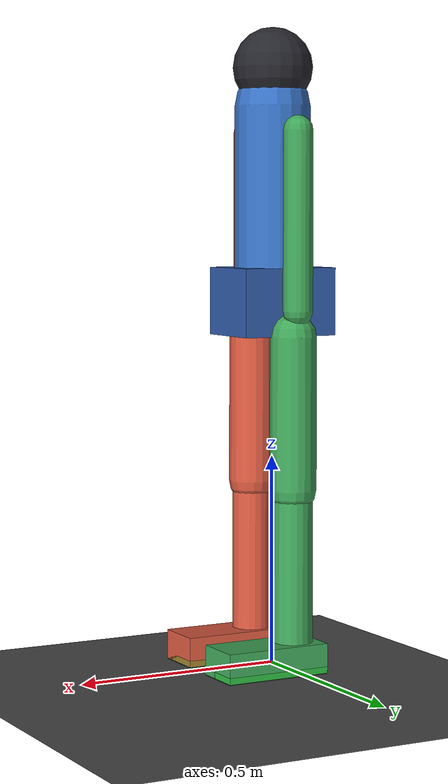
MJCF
<mujoco model="teaching_humanoid">
  <compiler angle="radian" inertiafromgeom="true" autolimits="true"/>
  <option timestep="0.002" gravity="0 0 -9.81" integrator="implicitfast">
    <flag contact="enable"/>
  </option>

  <visual>
    <headlight ambient="0.4 0.4 0.4" diffuse="0.8 0.8 0.8" specular="0.1 0.1 0.1"/>
    <rgba contactpoint="1 0 0 1" contactforce="1 0.3 0.1 1"/>
    <global azimuth="135" elevation="-18"/>
  </visual>

  <default>
    <joint damping="3" armature="0.02" limited="true"/>
    <geom friction="0.9 0.005 0.0001" condim="3" solref="0.01 1" solimp="0.9 0.95 0.001"/>
    <position kp="140" ctrllimited="true"/>
  </default>

  <asset>
    <texture name="grid" type="2d" builtin="checker" rgb1="0.25 0.25 0.25" rgb2="0.35 0.35 0.35" width="512" height="512"/>
    <material name="floor_mat" texture="grid" texrepeat="8 8" reflectance="0.05"/>
    <material name="pelvis_mat" rgba="0.18 0.35 0.65 1"/>
    <material name="torso_mat" rgba="0.22 0.45 0.78 1"/>
    <material name="left_mat" rgba="0.25 0.65 0.35 1"/>
    <material name="right_mat" rgba="0.85 0.35 0.25 1"/>
    <material name="dark_mat" rgba="0.15 0.15 0.18 1"/>
  </asset>

  <worldbody>
    <light pos="0 0 3" dir="0 0 -1" directional="true"/>
    <geom name="floor" type="plane" size="5 5 0.1" material="floor_mat" friction="0.9 0.005 0.0001"/>

    <body name="pelvis" pos="0 0 0.87">
      <freejoint name="root"/>
      <geom name="pelvis_geom" type="box" size="0.12 0.09 0.08" mass="6.0" material="pelvis_mat"/>
      <site name="pelvis_imu" pos="0 0 0" size="0.015" rgba="1 1 0 1"/>

      <body name="torso" pos="0 0 0.08">
        <geom name="torso_geom" type="capsule" fromto="0 0 0 0 0 0.38" size="0.09" mass="9.0" material="torso_mat"/>
        <body name="head" pos="0 0 0.47">
          <geom name="head_geom" type="sphere" size="0.095" mass="2.5" material="dark_mat"/>
        </body>
        <body name="left_arm" pos="0 0.12 0.32">
          <geom name="left_arm_geom" type="capsule" fromto="0 0 0 0 0 -0.42" size="0.035" mass="1.8" material="left_mat" contype="0" conaffinity="0"/>
        </body>
        <body name="right_arm" pos="0 -0.12 0.32">
          <geom name="right_arm_geom" type="capsule" fromto="0 0 0 0 0 -0.42" size="0.035" mass="1.8" material="right_mat" contype="0" conaffinity="0"/>
        </body>
      </body>

      <body name="left_thigh" pos="0 0.10 -0.08">
        <joint name="left_hip_yaw" type="hinge" axis="0 0 1" range="-0.6 0.6"/>
        <joint name="left_hip_roll" type="hinge" axis="1 0 0" range="-0.5 0.5"/>
        <joint name="left_hip_pitch" type="hinge" axis="0 1 0" range="-1.2 1.0"/>
        <geom name="left_thigh_geom" type="capsule" fromto="0 0 0 0 0 -0.36" size="0.055" mass="4.0" material="left_mat"/>
        <body name="left_shin" pos="0 0 -0.36">
          <joint name="left_knee" type="hinge" axis="0 1 0" range="0 2.1"/>
          <geom name="left_shin_geom" type="capsule" fromto="0 0 0 0 0 -0.36" size="0.047" mass="3.0" material="left_mat"/>
          <body name="left_foot" pos="0 0 -0.36">
            <joint name="left_ankle_pitch" type="hinge" axis="0 1 0" range="-0.8 0.8"/>
            <joint name="left_ankle_roll" type="hinge" axis="1 0 0" range="-0.5 0.5"/>
            <geom name="left_foot_geom" type="box" pos="0.07 0 -0.035" size="0.13 0.06 0.035" mass="1.2" material="left_mat"/>
            <site name="left_foot_touch_site" type="box" pos="0.07 0 -0.067" size="0.13 0.06 0.012" rgba="0 1 0 0.25"/>
          </body>
        </body>
      </body>

      <body name="right_thigh" pos="0 -0.10 -0.08">
        <joint name="right_hip_yaw" type="hinge" axis="0 0 1" range="-0.6 0.6"/>
        <joint name="right_hip_roll" type="hinge" axis="1 0 0" range="-0.5 0.5"/>
        <joint name="right_hip_pitch" type="hinge" axis="0 1 0" range="-1.2 1.0"/>
        <geom name="right_thigh_geom" type="capsule" fromto="0 0 0 0 0 -0.36" size="0.055" mass="4.0" material="right_mat"/>
        <body name="right_shin" pos="0 0 -0.36">
          <joint name="right_knee" type="hinge" axis="0 1 0" range="0 2.1"/>
          <geom name="right_shin_geom" type="capsule" fromto="0 0 0 0 0 -0.36" size="0.047" mass="3.0" material="right_mat"/>
          <body name="right_foot" pos="0 0 -0.36">
            <joint name="right_ankle_pitch" type="hinge" axis="0 1 0" range="-0.8 0.8"/>
            <joint name="right_ankle_roll" type="hinge" axis="1 0 0" range="-0.5 0.5"/>
            <geom name="right_foot_geom" type="box" pos="0.07 0 -0.035" size="0.13 0.06 0.035" mass="1.2" material="right_mat"/>
            <site name="right_foot_touch_site" type="box" pos="0.07 0 -0.067" size="0.13 0.06 0.012" rgba="0 1 0 0.25"/>
          </body>
        </body>
      </body>
    </body>
  </worldbody>

  <equality>
    <weld name="pelvis_weld" body1="pelvis"/>
  </equality>

  <actuator>
    <position name="left_hip_yaw_act" joint="left_hip_yaw" ctrlrange="-0.6 0.6"/>
    <position name="left_hip_roll_act" joint="left_hip_roll" ctrlrange="-0.5 0.5"/>
    <position name="left_hip_pitch_act" joint="left_hip_pitch" ctrlrange="-1.2 1.0"/>
    <position name="left_knee_act" joint="left_knee" ctrlrange="0 2.1"/>
    <position name="left_ankle_pitch_act" joint="left_ankle_pitch" ctrlrange="-0.8 0.8"/>
    <position name="left_ankle_roll_act" joint="left_ankle_roll" ctrlrange="-0.5 0.5"/>
    <position name="right_hip_yaw_act" joint="right_hip_yaw" ctrlrange="-0.6 0.6"/>
    <position name="right_hip_roll_act" joint="right_hip_roll" ctrlrange="-0.5 0.5"/>
    <position name="right_hip_pitch_act" joint="right_hip_pitch" ctrlrange="-1.2 1.0"/>
    <position name="right_knee_act" joint="right_knee" ctrlrange="0 2.1"/>
    <position name="right_ankle_pitch_act" joint="right_ankle_pitch" ctrlrange="-0.8 0.8"/>
    <position name="right_ankle_roll_act" joint="right_ankle_roll" ctrlrange="-0.5 0.5"/>
  </actuator>

  <sensor>
    <accelerometer name="pelvis_accelerometer" site="pelvis_imu"/>
    <gyro name="pelvis_gyro" site="pelvis_imu"/>
    <framequat name="pelvis_orientation" objtype="body" objname="pelvis"/>
    <subtreecom name="humanoid_com" body="pelvis"/>
    <touch name="left_foot_force" site="left_foot_touch_site"/>
    <touch name="right_foot_force" site="right_foot_touch_site"/>
  </sensor>

  <keyframe>
    <key name="stand"
         qpos="0 0 0.87 1 0 0 0  0 0 0 0 0 0  0 0 0 0 0 0"
         ctrl="0 0 0 0 0 0  0 0 0 0 0 0"/>
    <key name="crouch"
         qpos="0 0 0.81 1 0 0 0  0 0 -0.45 0.90 -0.45 0  0 0 -0.45 0.90 -0.45 0"
         ctrl="0 0 -0.45 0.90 -0.45 0  0 0 -0.45 0.90 -0.45 0"/>
  </keyframe>
</mujoco>
